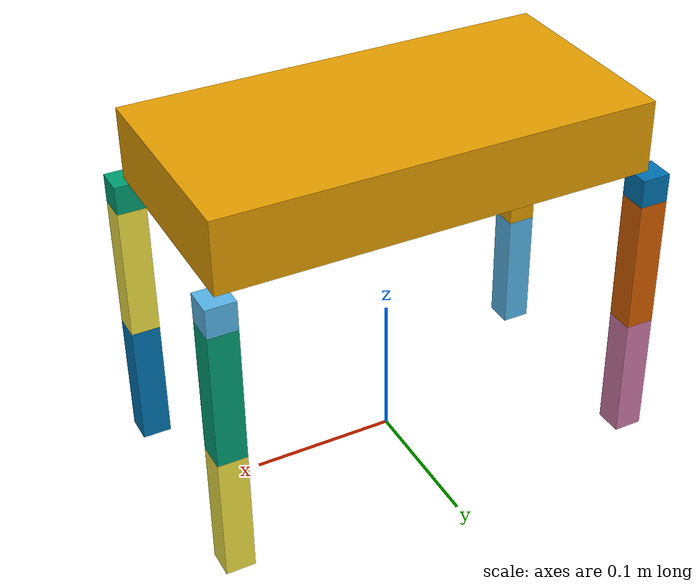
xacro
<?xml version="1.0"?>
<robot name="kid" xmlns:xacro="http://www.ros.org/wiki/xacro">
<!--Include xacro:macro -->
    <xacro:include filename="$(find mtn_kid)/urdf/links_joints.xacro"/>
    <!--Constants of the robot-->
    <xacro:property name="PI" value="3.1415926535897931"/>
    <xacro:property name="mass_box" value="1" /> <!-- mass of main box__approx for now -->
    <xacro:property name="mass_link" value="0.1" />
    <xacro:property name="length" value="0.3" /> <!-- length and width  dimensions of box -->
    <xacro:property name="width" value="0.15" /> <!-- length and width  dimensions of box -->
    <xacro:property name="thickness" value="0.05" /> <!-- length and width  dimensions of box -->
    <xacro:property name="link_wid" value="0.02" /> <!-- Link 1 -->
    <xacro:property name="height1" value="0.02" /> <!-- Link 1 -->
    <xacro:property name="height2" value="0.095" /> <!-- Link 2 -->
    <xacro:property name="height3" value="0.09" /> <!-- Link 3 -->

    <m_link_box name="base_link" origin_xyz="0 0 ${height1+height2+height3+thickness/2}" origin_rpy="0 0 0"
                size="${length} ${width} ${thickness}" mass="${mass_box}"
                ixx="${mass_box / 12.0 * (width*width + thickness*thickness)}"
                iyy="${mass_box / 12.0 * (length*length + thickness*thickness)}"
                izz="${mass_box / 12.0 * (width*width + length*length)}"/>
    <!--base_link_leg1 joints haven't yet added feet -->
    <m_joint name="base_link__leg11" type="revolute"
                axis_xyz="1 0 0" origin_rpy="0 0 0"
                origin_xyz="${length/2} ${width/2} ${height1+height2+height3}"
                parent="base_link" child="leg11"/>

    <m_link_box name="leg11" origin_xyz="0 0 ${-height1/2}" origin_rpy="0 0 0"
                size="${link_wid} ${link_wid} ${height1}" mass="${mass_link}"
                ixx="${mass_link / 12.0 * (link_wid*link_wid + height1*height1)}"
                iyy="${mass_link / 12.0 * (link_wid*link_wid + height1*height1)}"
                izz="${mass_link / 12.0 * (link_wid*link_wid + link_wid*link_wid)}"/>

    <m_joint name="leg11__leg12" type="revolute"
                axis_xyz="0 1 0" origin_rpy="0 0 0"
                origin_xyz="0 0 ${-height1}"
                parent="leg11" child="leg12"/>

    <m_link_box name="leg12" origin_xyz="0 0 ${-height2/2}" origin_rpy="0 0 0"
                size="${link_wid} ${link_wid} ${height2}" mass="${mass_link}"
                ixx="${mass_link / 12.0 * (link_wid*link_wid + height2*height2)}"
                iyy="${mass_link / 12.0 * (link_wid*link_wid + height2*height2)}"
                izz="${mass_link / 12.0 * (link_wid*link_wid + link_wid*link_wid)}"/>

    <m_joint name="leg12__leg13" type="revolute"
                axis_xyz="0 1 0" origin_rpy="0 0 0"
                origin_xyz="0 0 ${-height2}"
                parent="leg12" child="leg13"/>

    <m_link_box name="leg13" origin_xyz="0 0 ${-height3/2}" origin_rpy="0 0 0"
                size="${link_wid} ${link_wid} ${height3}" mass="${mass_link}"
                ixx="${mass_link / 12.0 * (link_wid*link_wid + height3*height3)}"
                iyy="${mass_link / 12.0 * (link_wid*link_wid + height3*height3)}"
                izz="${mass_link / 12.0 * (link_wid*link_wid + link_wid*link_wid)}"/>

    <!--base_link_leg2 joints haven't yet added feet -->
    <m_joint name="base_link__leg21" type="revolute"
                axis_xyz="1 0 0" origin_rpy="0 0 0"
                origin_xyz="${-length/2} ${width/2} ${height1+height2+height3}"
                parent="base_link" child="leg21"/>

    <m_link_box name="leg21" origin_xyz="0 0 ${-height1/2}" origin_rpy="0 0 0"
                size="${link_wid} ${link_wid} ${height1}" mass="${mass_link}"
                ixx="${mass_link / 12.0 * (link_wid*link_wid + height1*height1)}"
                iyy="${mass_link / 12.0 * (link_wid*link_wid + height1*height1)}"
                izz="${mass_link / 12.0 * (link_wid*link_wid + link_wid*link_wid)}"/>

    <m_joint name="leg21__leg22" type="revolute"
                axis_xyz="0 1 0" origin_rpy="0 0 0"
                origin_xyz="0 0 ${-height1}"
                parent="leg21" child="leg22"/>

    <m_link_box name="leg22" origin_xyz="0 0 ${-height2/2}" origin_rpy="0 0 0"
                size="${link_wid} ${link_wid} ${height2}" mass="${mass_link}"
                ixx="${mass_link / 12.0 * (link_wid*link_wid + height2*height2)}"
                iyy="${mass_link / 12.0 * (link_wid*link_wid + height2*height2)}"
                izz="${mass_link / 12.0 * (link_wid*link_wid + link_wid*link_wid)}"/>

    <m_joint name="leg22__leg23" type="revolute"
                axis_xyz="0 1 0" origin_rpy="0 0 0"
                origin_xyz="0 0 ${-height2}"
                parent="leg22" child="leg23"/>

    <m_link_box name="leg23" origin_xyz="0 0 ${-height3/2}" origin_rpy="0 0 0"
                size="${link_wid} ${link_wid} ${height3}" mass="${mass_link}"
                ixx="${mass_link / 12.0 * (link_wid*link_wid + height3*height3)}"
                iyy="${mass_link / 12.0 * (link_wid*link_wid + height3*height3)}"
                izz="${mass_link / 12.0 * (link_wid*link_wid + link_wid*link_wid)}"/>

        <!--base_link_leg3 joints haven't yet added feet -->
    <m_joint name="base_link__leg31" type="revolute"
                axis_xyz="1 0 0" origin_rpy="0 0 0"
                origin_xyz="${-length/2} ${-width/2} ${height1+height2+height3}"
                parent="base_link" child="leg31"/>

    <m_link_box name="leg31" origin_xyz="0 0 ${-height1/2}" origin_rpy="0 0 0"
                size="${link_wid} ${link_wid} ${height1}" mass="${mass_link}"
                ixx="${mass_link / 12.0 * (link_wid*link_wid + height1*height1)}"
                iyy="${mass_link / 12.0 * (link_wid*link_wid + height1*height1)}"
                izz="${mass_link / 12.0 * (link_wid*link_wid + link_wid*link_wid)}"/>

    <m_joint name="leg31__leg32" type="revolute"
                axis_xyz="0 1 0" origin_rpy="0 0 0"
                origin_xyz="0 0 ${-height1}"
                parent="leg31" child="leg32"/>

    <m_link_box name="leg32" origin_xyz="0 0 ${-height2/2}" origin_rpy="0 0 0"
                size="${link_wid} ${link_wid} ${height2}" mass="${mass_link}"
                ixx="${mass_link / 12.0 * (link_wid*link_wid + height2*height2)}"
                iyy="${mass_link / 12.0 * (link_wid*link_wid + height2*height2)}"
                izz="${mass_link / 12.0 * (link_wid*link_wid + link_wid*link_wid)}"/>

    <m_joint name="leg32__leg33" type="revolute"
                axis_xyz="0 1 0" origin_rpy="0 0 0"
                origin_xyz="0 0 ${-height2}"
                parent="leg32" child="leg33"/>

    <m_link_box name="leg33" origin_xyz="0 0 ${-height3/2}" origin_rpy="0 0 0"
                size="${link_wid} ${link_wid} ${height3}" mass="${mass_link}"
                ixx="${mass_link / 12.0 * (link_wid*link_wid + height3*height3)}"
                iyy="${mass_link / 12.0 * (link_wid*link_wid + height3*height3)}"
                izz="${mass_link / 12.0 * (link_wid*link_wid + link_wid*link_wid)}"/>

            <!--base_link_leg4 joints haven't yet added feet -->
    <m_joint name="base_link__leg41" type="revolute"
                axis_xyz="1 0 0" origin_rpy="0 0 0"
                origin_xyz="${length/2} ${-width/2} ${height1+height2+height3}"
                parent="base_link" child="leg41"/>

    <m_link_box name="leg41" origin_xyz="0 0 ${-height1/2}" origin_rpy="0 0 0"
                size="${link_wid} ${link_wid} ${height1}" mass="${mass_link}"
                ixx="${mass_link / 12.0 * (link_wid*link_wid + height1*height1)}"
                iyy="${mass_link / 12.0 * (link_wid*link_wid + height1*height1)}"
                izz="${mass_link / 12.0 * (link_wid*link_wid + link_wid*link_wid)}"/>

    <m_joint name="leg41__leg42" type="revolute"
                axis_xyz="0 1 0" origin_rpy="0 0 0"
                origin_xyz="0 0 ${-height1}"
                parent="leg41" child="leg42"/>

    <m_link_box name="leg42" origin_xyz="0 0 ${-height2/2}" origin_rpy="0 0 0"
                size="${link_wid} ${link_wid} ${height2}" mass="${mass_link}"
                ixx="${mass_link / 12.0 * (link_wid*link_wid + height2*height2)}"
                iyy="${mass_link / 12.0 * (link_wid*link_wid + height2*height2)}"
                izz="${mass_link / 12.0 * (link_wid*link_wid + link_wid*link_wid)}"/>

    <m_joint name="leg42__leg43" type="revolute"
                axis_xyz="0 1 0" origin_rpy="0 0 0"
                origin_xyz="0 0 ${-height2}"
                parent="leg42" child="leg43"/>

    <m_link_box name="leg43" origin_xyz="0 0 ${-height3/2}" origin_rpy="0 0 0"
                size="${link_wid} ${link_wid} ${height3}" mass="${mass_link}"
                ixx="${mass_link / 12.0 * (link_wid*link_wid + height3*height3)}"
                iyy="${mass_link / 12.0 * (link_wid*link_wid + height3*height3)}"
                izz="${mass_link / 12.0 * (link_wid*link_wid + link_wid*link_wid)}"/>
    <gazebo>
        <plugin name="gazebo_ros_control" filename="libgazebo_ros_control.so">
        </plugin>
    </gazebo>

</robot>

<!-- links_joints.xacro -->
<robot xmlns:xacro="http://www.ros.org/wiki/xacro">

  <xacro:macro name="m_joint" params="name type axis_xyz origin_rpy origin_xyz parent child">
    <joint name="${name}" type="${type}">
      <axis xyz="${axis_xyz}" />
      <limit effort="1000.0" lower="-1.57" upper="1.57" velocity="0.5" />
      <origin rpy="${origin_rpy}" xyz="${origin_xyz}" />
      <parent link="${parent}" />
      <child link="${child}" />
    </joint>
    <transmission name="trans_${name}">
        <type>transmission_interface/SimpleTransmission</type>
        <joint name="${name}">
            <hardwareInterface>PositionJointInterface</hardwareInterface>
        </joint>
        <actuator name="motor_${name}">
            <mechanicalReduction>1</mechanicalReduction>
        </actuator>
    </transmission>
  </xacro:macro>

  <xacro:macro name="m_link_cylinder" params="name origin_xyz origin_rpy radius length mass ixx iyy izz">
    <link name="${name}">
      <inertial>
        <mass value="${mass}" />
        <origin rpy="${origin_rpy}" xyz="${origin_xyz}" />
        <inertia ixx="${ixx}" ixy="0" ixz="0" iyy="${iyy}" iyz="0" izz="${izz}" />
      </inertial>
        <visual>
            <origin rpy="${origin_rpy}" xyz="${origin_xyz}" />
            <geometry>
                <cylinder radius="${radius}" length="${length}" />
            </geometry>
        </visual>
        <collision>
            <origin rpy="${origin_rpy}" xyz="${origin_xyz}" />
            <geometry>
                <cylinder radius="${radius}" length="${length}" />
            </geometry>
        </collision>
    </link>
  </xacro:macro>

  <xacro:macro name="m_link_box" params="name origin_xyz origin_rpy size mass ixx iyy izz">
    <link name="${name}">
        <inertial>
            <mass value="${mass}" />
            <origin rpy="${origin_rpy}" xyz="${origin_xyz}" />
            <inertia ixx="${ixx}" ixy="0" ixz="0" iyy="${iyy}" iyz="0" izz="${izz}" />
        </inertial>
        <visual>
            <origin rpy="${origin_rpy}" xyz="${origin_xyz}" />
            <geometry>
                <box size="${size}" />
            </geometry>
        </visual>
        <collision>
            <origin rpy="${origin_rpy}" xyz="${origin_xyz}" />
            <geometry>
                <box size="${size}" />
            </geometry>
        </collision>
    </link>
  </xacro:macro>

</robot>
